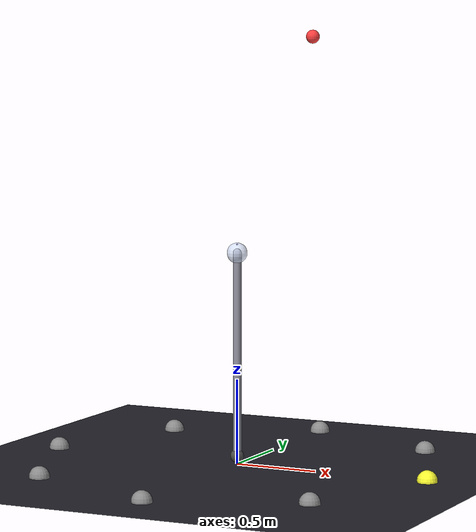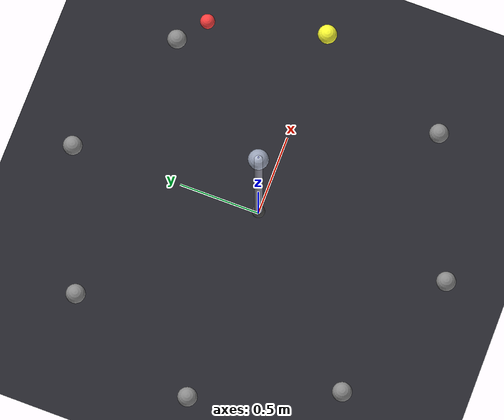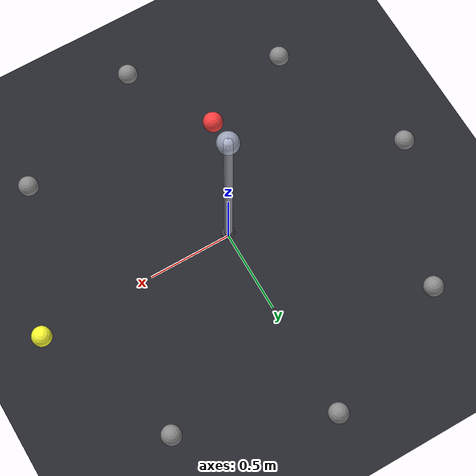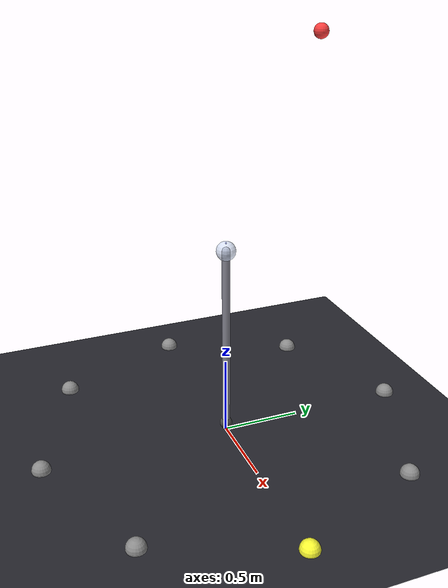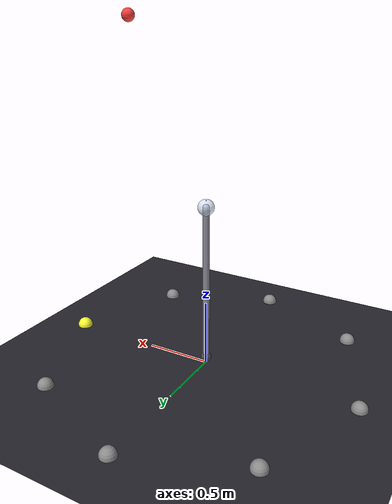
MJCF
<mujoco model="sundog_pole_v2">
  <compiler angle="radian" coordinate="local"/>
  <option timestep="0.005" gravity="0 0 -9.81" integrator="implicit"/>

  <default>
    <joint armature="0.01" damping="2.0" limited="true"/>
    <geom rgba="0.5 0.5 0.55 1"/>
    <site rgba="0.8 0.8 0.8 1" size="0.02"/>
  </default>

  <worldbody>
    <light name="key_light" pos="0 0 3" dir="0 0 -1" diffuse="0.9 0.9 0.9"/>

    <geom name="floor" type="plane" size="2.5 2.5 0.05" rgba="0.15 0.15 0.18 1"/>
    <geom name="ceiling" type="plane" size="2.5 2.5 0.01" pos="0 0 2.5"
          rgba="0.10 0.10 0.15 0.25" contype="0" conaffinity="0"/>

    <site name="laser_source" pos="0.3 0.4 2.5" size="0.04" rgba="1.0 0.25 0.25 1"/>

    <site name="detector_0" pos=" 1.200  0.000 0.005" size="0.06" rgba="1.0 1.0 0.2 1"/>
    <site name="detector_1" pos=" 0.849  0.849 0.005" size="0.06" rgba="0.55 0.55 0.55 1"/>
    <site name="detector_2" pos=" 0.000  1.200 0.005" size="0.06" rgba="0.55 0.55 0.55 1"/>
    <site name="detector_3" pos="-0.849  0.849 0.005" size="0.06" rgba="0.55 0.55 0.55 1"/>
    <site name="detector_4" pos="-1.200  0.000 0.005" size="0.06" rgba="0.55 0.55 0.55 1"/>
    <site name="detector_5" pos="-0.849 -0.849 0.005" size="0.06" rgba="0.55 0.55 0.55 1"/>
    <site name="detector_6" pos=" 0.000 -1.200 0.005" size="0.06" rgba="0.55 0.55 0.55 1"/>
    <site name="detector_7" pos=" 0.849 -0.849 0.005" size="0.06" rgba="0.55 0.55 0.55 1"/>

    <body name="pole_base" pos="0 0 0.05">
      <joint name="rx" type="hinge" axis="1 0 0" range="-1.5 1.5" pos="0 0 0"/>
      <joint name="ry" type="hinge" axis="0 1 0" range="-1.5 1.5" pos="0 0 0"/>
      <geom name="hub" type="sphere" size="0.04" rgba="0.3 0.3 0.3 1"/>

      <body name="pole_shaft" pos="0 0 0.6">
        <geom name="shaft" type="capsule" fromto="0 0 -0.6 0 0 0.6" size="0.025"
              rgba="0.55 0.55 0.6 1"/>
        <site name="mirror" pos="0 0 0.6" size="0.06" rgba="0.85 0.9 1.0 0.7"/>
        <site name="mirror_normal_tip" pos="0 0 0.65" size="0.005" rgba="0.2 0.2 1 1"/>
      </body>
    </body>
  </worldbody>

  <actuator>
    <position name="rx_motor" joint="rx" kp="80" kv="8" ctrlrange="-1.5 1.5"/>
    <position name="ry_motor" joint="ry" kp="80" kv="8" ctrlrange="-1.5 1.5"/>
  </actuator>
</mujoco>
